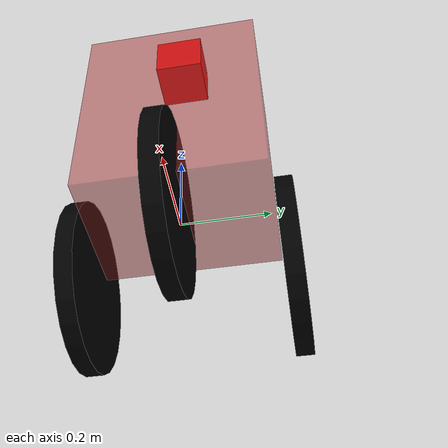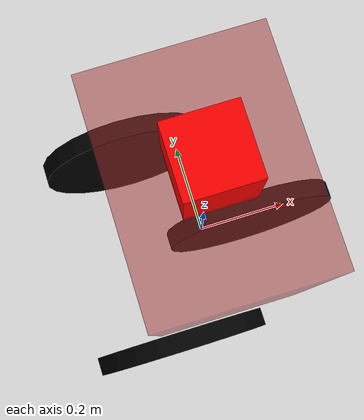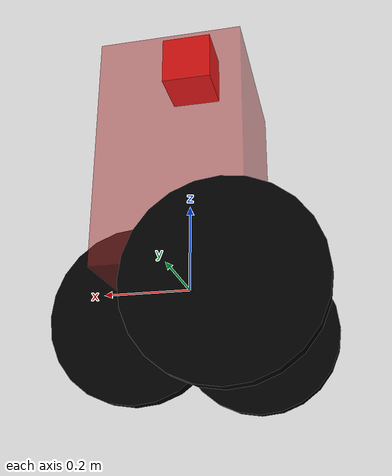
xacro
<?xml version="1.0"?>
<robot name="robot" xmlns:xacro="http://ros.org/wiki/xacro">
  <xacro:include filename="gazebo.urdf.xacro"/>
  <!-- Define robot constants -->
  <xacro:property name="base_width" value="0.42"/>
  <xacro:property name="base_length" value="0.32"/>
  <xacro:property name="base_height" value="0.53"/>

  <xacro:property name="wheel_radius" value="0.20"/>
  <xacro:property name="wheel_width" value="0.04"/>
  <xacro:property name="wheel_ygap" value="0.025"/>
  <xacro:property name="wheel_zoff" value="0.05"/>
  <xacro:property name="wheel_xoff" value="0.12"/>

  <xacro:property name="head_width" value="0.12"/>
  <xacro:property name="head_length" value="0.12"/>
  <xacro:property name="head_height" value="0.12"/>
  <xacro:property name="head_ygap" value="0.3"/>
  <xacro:property name="head_zoff" value="0.53"/>
  <xacro:property name="head_xoff" value="0.22"/>

  <xacro:property name="caster_xoff" value="0.24"/>

   <!-- Define intertial property macros  -->
  <xacro:macro name="box_inertia" params="m w h d">
    <inertial>
      <origin xyz="0 0 0" rpy="${pi/2} 0 ${pi/2}"/>
      <mass value="${m}"/>
      <inertia ixx="${(m/12) * (h*h + d*d)}" ixy="0.0" ixz="0.0" iyy="${(m/12) * (w*w + d*d)}" iyz="0.0" izz="${(m/12) * (w*w + h*h)}"/>
    </inertial>
  </xacro:macro>

  <xacro:macro name="cylinder_inertia" params="m r h">
    <inertial>
      <origin xyz="0 0 0" rpy="${pi/2} 0 0" />
      <mass value="${m}"/>
      <inertia ixx="${(m/12) * (3*r*r + h*h)}" ixy = "0" ixz = "0" iyy="${(m/12) * (3*r*r + h*h)}" iyz = "0" izz="${(m/2) * (r*r)}"/>
    </inertial>
  </xacro:macro>

  <xacro:macro name="sphere_inertia" params="m r">
    <inertial>
      <mass value="${m}"/>
      <inertia ixx="${(2/5) * m * (r*r)}" ixy="0.0" ixz="0.0" iyy="${(2/5) * m * (r*r)}" iyz="0.0" izz="${(2/5) * m * (r*r)}"/>
    </inertial>
  </xacro:macro>

  <!-- Robot Base -->
  <link name="base_link">
    <visual>
      <origin xyz="0 0 ${base_height/2}"/>
      <geometry>
        <box size="${base_length} ${base_width} ${base_height}"/>
      </geometry>
      <material name="Brown">
        <color rgba="0.647 0.165 0.165 0.5"/>
      </material>
    </visual>

    <collision>
      <origin xyz="0 0 ${base_height/2}"/>
      <geometry>
        <box size="${base_length} ${base_width} ${base_height}"/>
      </geometry>
    </collision>

    <xacro:box_inertia m="15" w="${base_width}" d="${base_length}" h="${base_height}"/>
  </link>

  <!-- Robot Footprint -->
  <link name="base_footprint"/>

  <joint name="base_joint" type="fixed">
    <parent link="base_link"/>
    <child link="base_footprint"/>
    <origin xyz="0.0 0.0 ${-(wheel_radius+wheel_zoff)}" rpy="0 0 0"/>
  </joint>

  <!-- Wheels -->
  <xacro:macro name="wheel" params="prefix x_reflect y_reflect">
    <link name="${prefix}_link">
      <visual>
        <origin xyz="0 0 0" rpy="${pi/2} 0 0"/>
        <geometry>
            <cylinder radius="${wheel_radius}" length="${wheel_width}"/>
        </geometry>
        <material name="Black">
          <color rgba="0.0 0.0 0.0 1.0"/>
        </material>
      </visual>

      <collision>
        <origin xyz="0 0 0" rpy="${pi/2} 0 0"/>
        <geometry>
          <cylinder radius="${wheel_radius}" length="${wheel_width}"/>
        </geometry>
      </collision>

      <xacro:cylinder_inertia m="0.5" r="${wheel_radius}" h="${wheel_width}"/>
    </link>

    <joint name="${prefix}_joint" type="continuous">
      <parent link="base_link"/>
      <child link="${prefix}_link"/>
      <origin xyz="${x_reflect*wheel_xoff} ${y_reflect*(base_width/2+wheel_ygap)} ${-wheel_zoff}" rpy="0 0 0"/>
      <axis xyz="0 1 0"/>
    </joint>
  </xacro:macro>

  <xacro:wheel prefix="drivewhl_l" x_reflect="-1" y_reflect="1" />
  <xacro:wheel prefix="drivewhl_m" x_reflect="1" y_reflect="0" />
  <xacro:wheel prefix="drivewhl_r" x_reflect="-1" y_reflect="-1" />

  <xacro:macro name="head" params="prefix x_reflect y_reflect">
    <link name="${prefix}_link">
        <visual>
            <origin xyz="0 0 0" rpy="0 0 0"/> <!-- Adjust the origin and orientation as needed -->
            <geometry>
                <box size="${head_length} ${head_width} ${head_height}"/> <!-- Use the defined properties for size -->
            </geometry>
            <material name="Red">
                <color rgba="1.0 0.0 0.0 1.0"/> <!-- Adjust the color as needed -->
            </material>
        </visual>

        <collision>
            <origin xyz="0 0 0" rpy="0 0 0"/> <!-- Adjust the origin and orientation as needed -->
            <geometry>
                <box size="${head_length} ${head_width} ${head_height}"/> <!-- Use the defined properties for size -->
            </geometry>
        </collision>

        <!-- Modify the inertia properties based on the size and mass of the head -->
        <inertial>
            <origin xyz="0.5 0 0" rpy="0 0 0"/> <!-- Adjust the origin and orientation as needed -->
            <mass value="1"/> <!-- Adjust the mass as needed -->
            <!-- Adjust the inertia properties based on the size and mass of the head -->
            <inertia ixx="${(1/12) * (head_height*head_height + head_width*head_width)}"
                     ixy="0.0"
                     ixz="0.0"
                     iyy="${(1/12) * (head_length*head_length + head_height*head_height)}"
                     iyz="0.0"
                     izz="${(1/12) * (head_length*head_length + head_width*head_width)}"/>
        </inertial>
    </link>

    <joint name="${prefix}_joint" type="fixed">
        <parent link="base_link"/>
        <child link="${prefix}_link"/>
        <!-- Use the defined properties for position -->
        <origin xyz="${x_reflect*head_xoff} ${y_reflect*(base_width/2+head_ygap)} ${head_zoff+head_height/2-0.01}" rpy="0 0 0"/>
        <axis xyz="0 1 0"/>
    </joint>
  </xacro:macro>

  <xacro:head prefix="heady" x_reflect="0" y_reflect="0" />

</robot>
